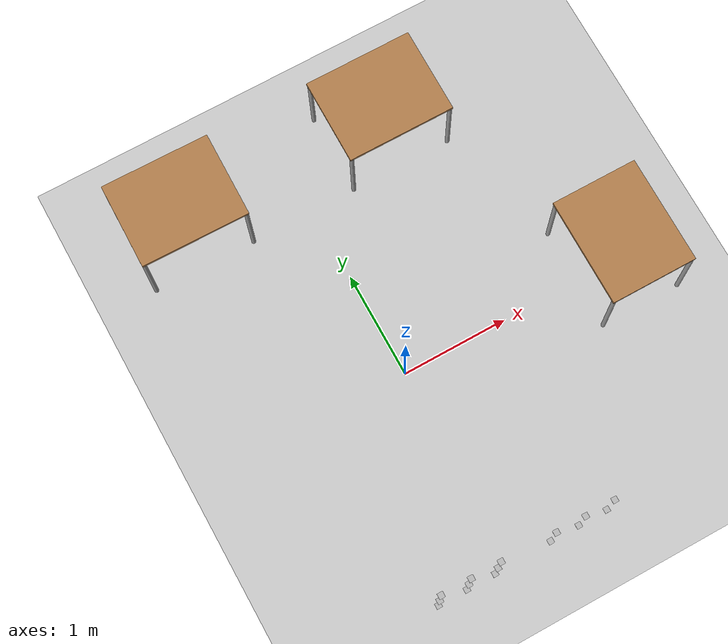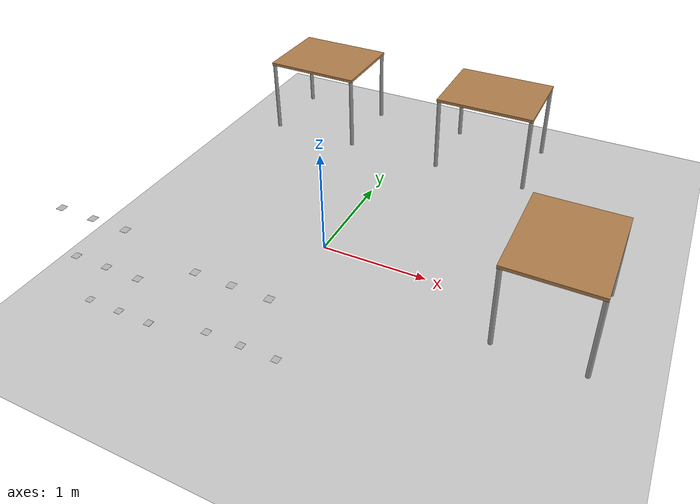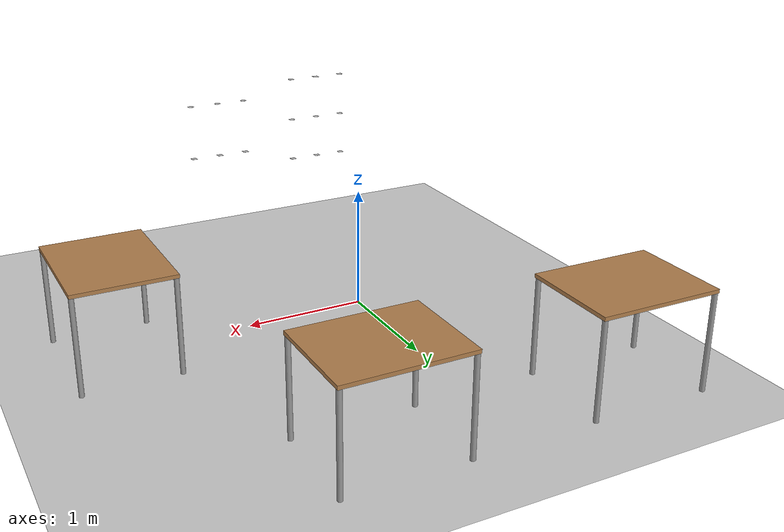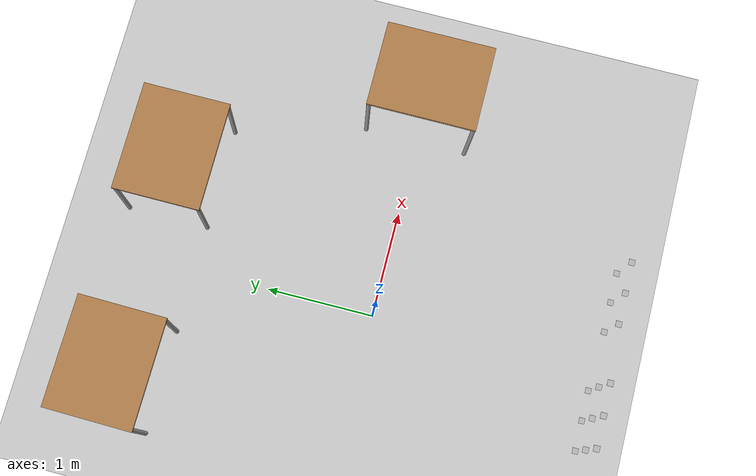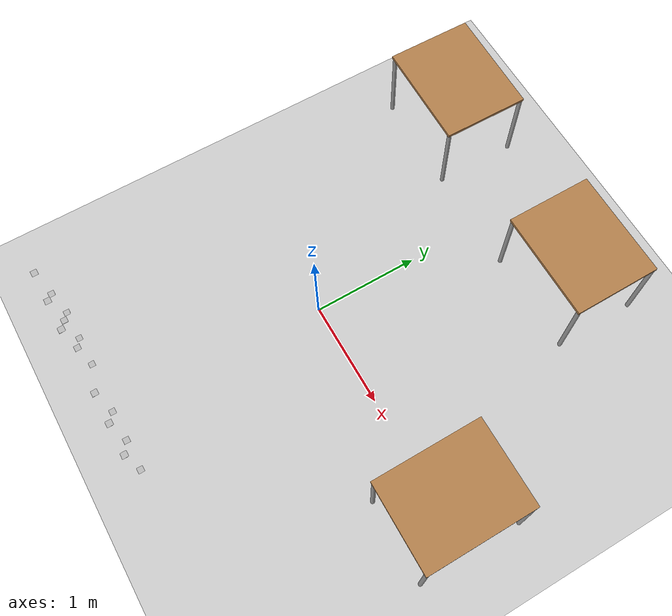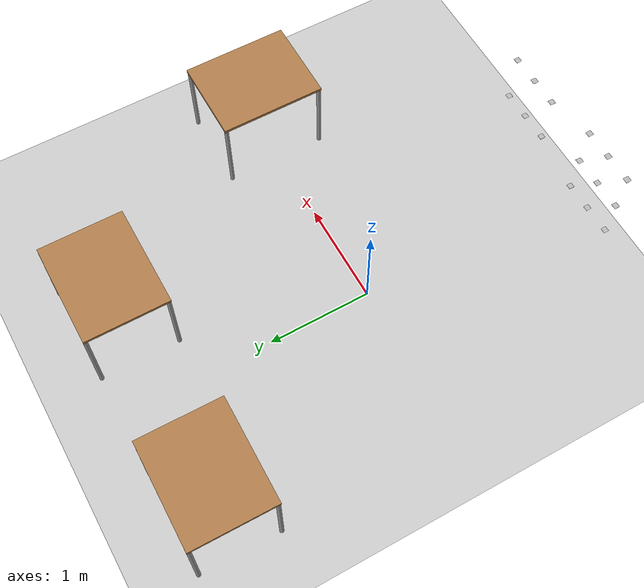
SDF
<sdf version="1.6">
 <world name="default">
  <plugin name="ros_link_attacher_plugin" filename="libgazebo_ros_link_attacher.so"/>
  <light name="sun" type="directional">
   <pose>0 0 10 0 -0 0</pose>
   <diffuse>0.8 0.8 0.8 1</diffuse>
   <specular>0.2 0.2 0.2 1</specular>
   <attenuation>
    <range>1000</range>
    <constant>0.9</constant>
    <linear>0.01</linear>
    <quadratic>0.001</quadratic>
   </attenuation>
   <direction>-0.5 0.1 -0.9</direction>
  </light>
  <model name="ground_plane">
   <static>1</static>
   <link name="link">
    <collision name="collision">
     <geometry><plane><normal>0 0 1</normal><size>100 100</size></plane></geometry>
     <surface>
      <contact><collide_bitmask>65535</collide_bitmask></contact>
      <friction><ode><mu>100</mu><mu2>50</mu2></ode></friction>
     </surface>
    </collision>
    <visual name="visual">
     <cast_shadows>0</cast_shadows>
     <geometry><plane><normal>0 0 1</normal><size>100 100</size></plane></geometry>
     <material>
      <script><uri>file://media/materials/scripts/gazebo.material</uri><name>Gazebo/Grey</name></script>
     </material>
    </visual>
   </link>
  </model>
  <gravity>0 0 -9.8</gravity>
  <magnetic_field>6e-06 2.3e-05 -4.2e-05</magnetic_field>
  <atmosphere type="adiabatic"/>
  <physics name="default_physics" default="0" type="ode">
   <max_step_size>0.001</max_step_size>
   <real_time_factor>1</real_time_factor>
   <real_time_update_rate>1000</real_time_update_rate>
  </physics>
  <scene><ambient>0.4 0.4 0.4 1</ambient><background>0.7 0.7 0.7 1</background><shadows>1</shadows></scene>
  <audio><device>default</device></audio>
  <spherical_coordinates>
   <surface_model>EARTH_WGS84</surface_model>
   <latitude_deg>0</latitude_deg>
   <longitude_deg>0</longitude_deg>
   <elevation>0</elevation>
   <heading_deg>0</heading_deg>
  </spherical_coordinates>
  <model name="table">
   <static>1</static>
   <link name="link">
    <collision name="surface">
     <pose>0 0 0.8 0 -0 0</pose>
     <geometry><box><size>1 0.8 0.03</size></box></geometry>
    </collision>
    <visual name="visual1">
     <pose>0 0 0.8 0 -0 0</pose>
     <geometry><box><size>1 0.8 0.03</size></box></geometry>
     <material>
      <script><uri>file://media/materials/scripts/gazebo.material</uri><name>Gazebo/Wood</name></script>
     </material>
    </visual>
    <collision name="front_left_leg">
     <pose>0.48 0.38 0.4 0 -0 0</pose>
     <geometry><cylinder><radius>0.02</radius><length>0.8</length></cylinder></geometry>
    </collision>
    <visual name="front_left_leg">
     <pose>0.48 0.38 0.4 0 -0 0</pose>
     <geometry><cylinder><radius>0.02</radius><length>0.8</length></cylinder></geometry>
     <material>
      <script><uri>file://media/materials/scripts/gazebo.material</uri><name>Gazebo/Grey</name></script>
     </material>
    </visual>
    <collision name="front_right_leg">
     <pose>0.48 -0.38 0.4 0 -0 0</pose>
     <geometry><cylinder><radius>0.02</radius><length>0.8</length></cylinder></geometry>
    </collision>
    <visual name="front_right_leg">
     <pose>0.48 -0.38 0.4 0 -0 0</pose>
     <geometry><cylinder><radius>0.02</radius><length>0.8</length></cylinder></geometry>
     <material>
      <script><uri>file://media/materials/scripts/gazebo.material</uri><name>Gazebo/Grey</name></script>
     </material>
    </visual>
    <collision name="back_right_leg">
     <pose>-0.48 -0.38 0.4 0 -0 0</pose>
     <geometry><cylinder><radius>0.02</radius><length>0.8</length></cylinder></geometry>
    </collision>
    <visual name="back_right_leg">
     <pose>-0.48 -0.38 0.4 0 -0 0</pose>
     <geometry><cylinder><radius>0.02</radius><length>0.8</length></cylinder></geometry>
     <material>
      <script><uri>file://media/materials/scripts/gazebo.material</uri><name>Gazebo/Grey</name></script>
     </material>
    </visual>
    <collision name="back_left_leg">
     <pose>-0.48 0.38 0.4 0 -0 0</pose>
     <geometry><cylinder><radius>0.02</radius><length>0.8</length></cylinder></geometry>
    </collision>
    <visual name="back_left_leg">
     <pose>-0.48 0.38 0.4 0 -0 0</pose>
     <geometry><cylinder><radius>0.02</radius><length>0.8</length></cylinder></geometry>
     <material>
      <script><uri>file://media/materials/scripts/gazebo.material</uri><name>Gazebo/Grey</name></script>
     </material>
    </visual>
    <velocity_decay><linear>0</linear><angular>0</angular></velocity_decay>
   </link>
   <pose>0.90199 2.08755 0 0 -0 3.14</pose>
  </model>
  <model name="table_0">
   <static>1</static>
   <link name="link">
    <collision name="surface">
     <pose>0 0 0.8 0 -0 0</pose>
     <geometry><box><size>1 0.8 0.03</size></box></geometry>
    </collision>
    <visual name="visual1">
     <pose>0 0 0.8 0 -0 0</pose>
     <geometry><box><size>1 0.8 0.03</size></box></geometry>
     <material>
      <script><uri>file://media/materials/scripts/gazebo.material</uri><name>Gazebo/Wood</name></script>
     </material>
    </visual>
    <collision name="front_left_leg">
     <pose>0.48 0.38 0.4 0 -0 0</pose>
     <geometry><cylinder><radius>0.02</radius><length>0.8</length></cylinder></geometry>
    </collision>
    <visual name="front_left_leg">
     <pose>0.48 0.38 0.4 0 -0 0</pose>
     <geometry><cylinder><radius>0.02</radius><length>0.8</length></cylinder></geometry>
     <material>
      <script><uri>file://media/materials/scripts/gazebo.material</uri><name>Gazebo/Grey</name></script>
     </material>
    </visual>
    <collision name="front_right_leg">
     <pose>0.48 -0.38 0.4 0 -0 0</pose>
     <geometry><cylinder><radius>0.02</radius><length>0.8</length></cylinder></geometry>
    </collision>
    <visual name="front_right_leg">
     <pose>0.48 -0.38 0.4 0 -0 0</pose>
     <geometry><cylinder><radius>0.02</radius><length>0.8</length></cylinder></geometry>
     <material>
      <script><uri>file://media/materials/scripts/gazebo.material</uri><name>Gazebo/Grey</name></script>
     </material>
    </visual>
    <collision name="back_right_leg">
     <pose>-0.48 -0.38 0.4 0 -0 0</pose>
     <geometry><cylinder><radius>0.02</radius><length>0.8</length></cylinder></geometry>
    </collision>
    <visual name="back_right_leg">
     <pose>-0.48 -0.38 0.4 0 -0 0</pose>
     <geometry><cylinder><radius>0.02</radius><length>0.8</length></cylinder></geometry>
     <material>
      <script><uri>file://media/materials/scripts/gazebo.material</uri><name>Gazebo/Grey</name></script>
     </material>
    </visual>
    <collision name="back_left_leg">
     <pose>-0.48 0.38 0.4 0 -0 0</pose>
     <geometry><cylinder><radius>0.02</radius><length>0.8</length></cylinder></geometry>
    </collision>
    <visual name="back_left_leg">
     <pose>-0.48 0.38 0.4 0 -0 0</pose>
     <geometry><cylinder><radius>0.02</radius><length>0.8</length></cylinder></geometry>
     <material>
      <script><uri>file://media/materials/scripts/gazebo.material</uri><name>Gazebo/Grey</name></script>
     </material>
    </visual>
    <velocity_decay><linear>0</linear><angular>0</angular></velocity_decay>
   </link>
   <pose>2.11403 0.023827 0 0 -0 1.57</pose>
  </model>
  <model name="table_1">
   <static>1</static>
   <link name="link">
    <collision name="surface">
     <pose>0 0 0.8 0 -0 0</pose>
     <geometry><box><size>1 0.8 0.03</size></box></geometry>
    </collision>
    <visual name="visual1">
     <pose>0 0 0.8 0 -0 0</pose>
     <geometry><box><size>1 0.8 0.03</size></box></geometry>
     <material>
      <script><uri>file://media/materials/scripts/gazebo.material</uri><name>Gazebo/Wood</name></script>
     </material>
    </visual>
    <collision name="front_left_leg">
     <pose>0.48 0.38 0.4 0 -0 0</pose>
     <geometry><cylinder><radius>0.02</radius><length>0.8</length></cylinder></geometry>
    </collision>
    <visual name="front_left_leg">
     <pose>0.48 0.38 0.4 0 -0 0</pose>
     <geometry><cylinder><radius>0.02</radius><length>0.8</length></cylinder></geometry>
     <material>
      <script><uri>file://media/materials/scripts/gazebo.material</uri><name>Gazebo/Grey</name></script>
     </material>
    </visual>
    <collision name="front_right_leg">
     <pose>0.48 -0.38 0.4 0 -0 0</pose>
     <geometry><cylinder><radius>0.02</radius><length>0.8</length></cylinder></geometry>
    </collision>
    <visual name="front_right_leg">
     <pose>0.48 -0.38 0.4 0 -0 0</pose>
     <geometry><cylinder><radius>0.02</radius><length>0.8</length></cylinder></geometry>
     <material>
      <script><uri>file://media/materials/scripts/gazebo.material</uri><name>Gazebo/Grey</name></script>
     </material>
    </visual>
    <collision name="back_right_leg">
     <pose>-0.48 -0.38 0.4 0 -0 0</pose>
     <geometry><cylinder><radius>0.02</radius><length>0.8</length></cylinder></geometry>
    </collision>
    <visual name="back_right_leg">
     <pose>-0.48 -0.38 0.4 0 -0 0</pose>
     <geometry><cylinder><radius>0.02</radius><length>0.8</length></cylinder></geometry>
     <material>
      <script><uri>file://media/materials/scripts/gazebo.material</uri><name>Gazebo/Grey</name></script>
     </material>
    </visual>
    <collision name="back_left_leg">
     <pose>-0.48 0.38 0.4 0 -0 0</pose>
     <geometry><cylinder><radius>0.02</radius><length>0.8</length></cylinder></geometry>
    </collision>
    <visual name="back_left_leg">
     <pose>-0.48 0.38 0.4 0 -0 0</pose>
     <geometry><cylinder><radius>0.02</radius><length>0.8</length></cylinder></geometry>
     <material>
      <script><uri>file://media/materials/scripts/gazebo.material</uri><name>Gazebo/Grey</name></script>
     </material>
    </visual>
    <velocity_decay><linear>0</linear><angular>0</angular></velocity_decay>
   </link>
   <pose>-1.06741 2.09391 0 0 -0 3.12841</pose>
  </model>
  <model name="aruco_marker_original_111">
   <static>0</static>
   <link name="marker">
    <inertial>
     <mass>0.1</mass>
     <inertia><ixx>0</ixx><ixy>0</ixy><ixz>0</ixz><iyy>0</iyy><iyz>0</iyz><izz>0</izz></inertia>
    </inertial>
    <visual name="visual">
     <pose>0 0 0 0 -0 1.57</pose>
     <geometry><box><size>0.05 0.05 0.001</size></box></geometry>
     <material>
      <script>
       <uri>model://aruco_marker_original_111/material/scripts</uri>
       <uri>model://aruco_marker_original_111/material/textures</uri>
       <name>Aruco/aruco_marker_original_111</name>
      </script>
     </material>
    </visual>
    <collision name="collision"><geometry><box><size>0.05 0.05 0.001</size></box></geometry></collision>
    <self_collide>1</self_collide>
   </link>
   <pose>0.250002 -1.93 0.853763 1e-06 -2e-06 3.13976</pose>
  </model>
  <model name="aruco_marker_original_222">
   <static>0</static>
   <link name="marker">
    <inertial>
     <mass>0.1</mass>
     <inertia><ixx>0</ixx><ixy>0</ixy><ixz>0</ixz><iyy>0</iyy><iyz>0</iyz><izz>0</izz></inertia>
    </inertial>
    <visual name="visual">
     <pose>0 0 0 0 -0 1.57</pose>
     <geometry><box><size>0.05 0.05 0.001</size></box></geometry>
     <material>
      <script>
       <uri>model://aruco_marker_original_222/material/scripts</uri>
       <uri>model://aruco_marker_original_222/material/textures</uri>
       <name>Aruco/aruco_marker_original_222</name>
      </script>
     </material>
    </visual>
    <collision name="collision"><geometry><box><size>0.05 0.05 0.001</size></box></geometry></collision>
    <self_collide>1</self_collide>
   </link>
   <pose>0.771 -1.93 1.36018 -6e-06 -3e-06 3.14</pose>
  </model>
  <model name="aruco_marker_original_444">
   <static>0</static>
   <link name="marker">
    <inertial>
     <mass>0.1</mass>
     <inertia><ixx>0</ixx><ixy>0</ixy><ixz>0</ixz><iyy>0</iyy><iyz>0</iyz><izz>0</izz></inertia>
    </inertial>
    <visual name="visual">
     <pose>0 0 0 0 -0 1.57</pose>
     <geometry><box><size>0.05 0.05 0.001</size></box></geometry>
     <material>
      <script>
       <uri>model://aruco_marker_original_444/material/scripts</uri>
       <uri>model://aruco_marker_original_444/material/textures</uri>
       <name>Aruco/aruco_marker_original_444</name>
      </script>
     </material>
    </visual>
    <collision name="collision"><geometry><box><size>0.05 0.05 0.001</size></box></geometry></collision>
    <self_collide>1</self_collide>
   </link>
   <pose>-0.51 -1.93 1.11049 0 4e-06 3.14</pose>
  </model>
  <model name="aruco_marker_original_582">
   <static>0</static>
   <link name="marker">
    <inertial>
     <mass>0.1</mass>
     <inertia><ixx>0</ixx><ixy>0</ixy><ixz>0</ixz><iyy>0</iyy><iyz>0</iyz><izz>0</izz></inertia>
    </inertial>
    <visual name="visual">
     <pose>0 0 0 0 -0 1.57</pose>
     <geometry><box><size>0.05 0.05 0.001</size></box></geometry>
     <material>
      <script>
       <uri>model://aruco_marker_original_582/material/scripts</uri>
       <uri>model://aruco_marker_original_582/material/textures</uri>
       <name>Aruco/aruco_marker_original_582</name>
      </script>
     </material>
    </visual>
    <collision name="collision"><geometry><box><size>0.05 0.05 0.001</size></box></geometry></collision>
    <self_collide>1</self_collide>
   </link>
   <pose>-0.25 -1.93 1.51049 -1.7e-05 -1.2e-05 3.14</pose>
  </model>
  <model name="aruco_marker_original_333">
   <static>0</static>
   <link name="marker">
    <inertial>
     <mass>0.1</mass>
     <inertia><ixx>0</ixx><ixy>0</ixy><ixz>0</ixz><iyy>0</iyy><iyz>0</iyz><izz>0</izz></inertia>
    </inertial>
    <visual name="visual">
     <pose>0 0 0 0 -0 1.57</pose>
     <geometry><box><size>0.05 0.05 0.001</size></box></geometry>
     <material>
      <script>
       <uri>model://aruco_marker_original_333/material/scripts</uri>
       <uri>model://aruco_marker_original_333/material/textures</uri>
       <name>Aruco/aruco_marker_original_333</name>
      </script>
     </material>
    </visual>
    <collision name="collision"><geometry><box><size>0.05 0.05 0.001</size></box></geometry></collision>
    <self_collide>1</self_collide>
   </link>
   <pose>-0.25 -1.93 0.710492 -1e-05 -1e-05 0</pose>
  </model>
  <model name="aruco_marker_original_111_clone">
   <static>0</static>
   <link name="marker">
    <inertial>
     <mass>0.1</mass>
     <inertia><ixx>0</ixx><ixy>0</ixy><ixz>0</ixz><iyy>0</iyy><iyz>0</iyz><izz>0</izz></inertia>
    </inertial>
    <visual name="visual">
     <pose>0 0 0 0 -0 1.57</pose>
     <geometry><box><size>0.05 0.05 0.001</size></box></geometry>
     <material>
      <script>
       <uri>model://aruco_marker_original_111/material/scripts</uri>
       <uri>model://aruco_marker_original_111/material/textures</uri>
       <name>Aruco/aruco_marker_original_111</name>
      </script>
     </material>
    </visual>
    <collision name="collision"><geometry><box><size>0.05 0.05 0.001</size></box></geometry></collision>
    <self_collide>1</self_collide>
   </link>
   <pose>0.51 -1.93 0.853753 -8e-06 2e-06 3.14</pose>
  </model>
  <model name="aruco_marker_original_111_clone_0">
   <static>0</static>
   <link name="marker">
    <inertial>
     <mass>0.1</mass>
     <inertia><ixx>0</ixx><ixy>0</ixy><ixz>0</ixz><iyy>0</iyy><iyz>0</iyz><izz>0</izz></inertia>
    </inertial>
    <visual name="visual">
     <pose>0 0 0 0 -0 1.57</pose>
     <geometry><box><size>0.05 0.05 0.001</size></box></geometry>
     <material>
      <script>
       <uri>model://aruco_marker_original_111/material/scripts</uri>
       <uri>model://aruco_marker_original_111/material/textures</uri>
       <name>Aruco/aruco_marker_original_111</name>
      </script>
     </material>
    </visual>
    <collision name="collision"><geometry><box><size>0.05 0.05 0.001</size></box></geometry></collision>
    <self_collide>1</self_collide>
   </link>
   <pose>0.77 -1.93 0.853754 -1e-05 -1.3e-05 3.14</pose>
  </model>
  <model name="aruco_marker_original_222_clone">
   <static>0</static>
   <link name="marker">
    <inertial>
     <mass>0.1</mass>
     <inertia><ixx>0</ixx><ixy>0</ixy><ixz>0</ixz><iyy>0</iyy><iyz>0</iyz><izz>0</izz></inertia>
    </inertial>
    <visual name="visual">
     <pose>0 0 0 0 -0 1.57</pose>
     <geometry><box><size>0.05 0.05 0.001</size></box></geometry>
     <material>
      <script>
       <uri>model://aruco_marker_original_222/material/scripts</uri>
       <uri>model://aruco_marker_original_222/material/textures</uri>
       <name>Aruco/aruco_marker_original_222</name>
      </script>
     </material>
    </visual>
    <collision name="collision"><geometry><box><size>0.05 0.05 0.001</size></box></geometry></collision>
    <self_collide>1</self_collide>
   </link>
   <pose>0.51 -1.93 1.36019 -3e-06 8e-06 3.14</pose>
  </model>
  <model name="aruco_marker_original_222_clone_clone">
   <static>0</static>
   <link name="marker">
    <inertial>
     <mass>0.1</mass>
     <inertia><ixx>0</ixx><ixy>0</ixy><ixz>0</ixz><iyy>0</iyy><iyz>0</iyz><izz>0</izz></inertia>
    </inertial>
    <visual name="visual">
     <pose>0 0 0 0 -0 1.57</pose>
     <geometry><box><size>0.05 0.05 0.001</size></box></geometry>
     <material>
      <script>
       <uri>model://aruco_marker_original_222/material/scripts</uri>
       <uri>model://aruco_marker_original_222/material/textures</uri>
       <name>Aruco/aruco_marker_original_222</name>
      </script>
     </material>
    </visual>
    <collision name="collision"><geometry><box><size>0.05 0.05 0.001</size></box></geometry></collision>
    <self_collide>1</self_collide>
   </link>
   <pose>0.25 -1.93 1.36018 8e-06 1.5e-05 3.14</pose>
  </model>
  <model name="aruco_marker_original_333_clone">
   <static>0</static>
   <link name="marker">
    <inertial>
     <mass>0.1</mass>
     <inertia><ixx>0</ixx><ixy>0</ixy><ixz>0</ixz><iyy>0</iyy><iyz>0</iyz><izz>0</izz></inertia>
    </inertial>
    <visual name="visual">
     <pose>0 0 0 0 -0 1.57</pose>
     <geometry><box><size>0.05 0.05 0.001</size></box></geometry>
     <material>
      <script>
       <uri>model://aruco_marker_original_333/material/scripts</uri>
       <uri>model://aruco_marker_original_333/material/textures</uri>
       <name>Aruco/aruco_marker_original_333</name>
      </script>
     </material>
    </visual>
    <collision name="collision"><geometry><box><size>0.05 0.05 0.001</size></box></geometry></collision>
    <self_collide>1</self_collide>
   </link>
   <pose>-0.51 -1.93 0.71049 1e-06 7e-06 0</pose>
  </model>
  <model name="aruco_marker_original_333_clone_clone">
   <static>0</static>
   <link name="marker">
    <inertial>
     <mass>0.1</mass>
     <inertia><ixx>0</ixx><ixy>0</ixy><ixz>0</ixz><iyy>0</iyy><iyz>0</iyz><izz>0</izz></inertia>
    </inertial>
    <visual name="visual">
     <pose>0 0 0 0 -0 1.57</pose>
     <geometry><box><size>0.05 0.05 0.001</size></box></geometry>
     <material>
      <script>
       <uri>model://aruco_marker_original_333/material/scripts</uri>
       <uri>model://aruco_marker_original_333/material/textures</uri>
       <name>Aruco/aruco_marker_original_333</name>
      </script>
     </material>
    </visual>
    <collision name="collision"><geometry><box><size>0.05 0.05 0.001</size></box></geometry></collision>
    <self_collide>1</self_collide>
   </link>
   <pose>-0.77 -1.93 0.710491 -8e-06 -6e-06 0</pose>
  </model>
  <model name="aruco_marker_original_444_clone">
   <static>0</static>
   <link name="marker">
    <inertial>
     <mass>0.1</mass>
     <inertia><ixx>0</ixx><ixy>0</ixy><ixz>0</ixz><iyy>0</iyy><iyz>0</iyz><izz>0</izz></inertia>
    </inertial>
    <visual name="visual">
     <pose>0 0 0 0 -0 1.57</pose>
     <geometry><box><size>0.05 0.05 0.001</size></box></geometry>
     <material>
      <script>
       <uri>model://aruco_marker_original_444/material/scripts</uri>
       <uri>model://aruco_marker_original_444/material/textures</uri>
       <name>Aruco/aruco_marker_original_444</name>
      </script>
     </material>
    </visual>
    <collision name="collision"><geometry><box><size>0.05 0.05 0.001</size></box></geometry></collision>
    <self_collide>1</self_collide>
   </link>
   <pose>-0.77 -1.93 1.1105 -2e-06 2e-06 3.14</pose>
  </model>
  <model name="aruco_marker_original_444_clone_clone">
   <static>0</static>
   <link name="marker">
    <inertial>
     <mass>0.1</mass>
     <inertia><ixx>0</ixx><ixy>0</ixy><ixz>0</ixz><iyy>0</iyy><iyz>0</iyz><izz>0</izz></inertia>
    </inertial>
    <visual name="visual">
     <pose>0 0 0 0 -0 1.57</pose>
     <geometry><box><size>0.05 0.05 0.001</size></box></geometry>
     <material>
      <script>
       <uri>model://aruco_marker_original_444/material/scripts</uri>
       <uri>model://aruco_marker_original_444/material/textures</uri>
       <name>Aruco/aruco_marker_original_444</name>
      </script>
     </material>
    </visual>
    <collision name="collision"><geometry><box><size>0.05 0.05 0.001</size></box></geometry></collision>
    <self_collide>1</self_collide>
   </link>
   <pose>-0.25 -1.93 1.1105 -5e-06 -3e-06 3.14</pose>
  </model>
  <model name="aruco_marker_original_582_clone">
   <static>0</static>
   <link name="marker">
    <inertial>
     <mass>0.1</mass>
     <inertia><ixx>0</ixx><ixy>0</ixy><ixz>0</ixz><iyy>0</iyy><iyz>0</iyz><izz>0</izz></inertia>
    </inertial>
    <visual name="visual">
     <pose>0 0 0 0 -0 1.57</pose>
     <geometry><box><size>0.05 0.05 0.001</size></box></geometry>
     <material>
      <script>
       <uri>model://aruco_marker_original_582/material/scripts</uri>
       <uri>model://aruco_marker_original_582/material/textures</uri>
       <name>Aruco/aruco_marker_original_582</name>
      </script>
     </material>
    </visual>
    <collision name="collision"><geometry><box><size>0.05 0.05 0.001</size></box></geometry></collision>
    <self_collide>1</self_collide>
   </link>
   <pose>-0.51 -1.93 1.51049 7e-06 1.1e-05 3.14</pose>
  </model>
  <model name="aruco_marker_original_582_clone_clone">
   <static>0</static>
   <link name="marker">
    <inertial>
     <mass>0.1</mass>
     <inertia><ixx>0</ixx><ixy>0</ixy><ixz>0</ixz><iyy>0</iyy><iyz>0</iyz><izz>0</izz></inertia>
    </inertial>
    <visual name="visual">
     <pose>0 0 0 0 -0 1.57</pose>
     <geometry><box><size>0.05 0.05 0.001</size></box></geometry>
     <material>
      <script>
       <uri>model://aruco_marker_original_582/material/scripts</uri>
       <uri>model://aruco_marker_original_582/material/textures</uri>
       <name>Aruco/aruco_marker_original_582</name>
      </script>
     </material>
    </visual>
    <collision name="collision"><geometry><box><size>0.05 0.05 0.001</size></box></geometry></collision>
    <self_collide>1</self_collide>
   </link>
   <pose>-0.77 -1.93 1.5105 -4e-06 3e-06 3.14</pose>
  </model>
 </world>
</sdf>
